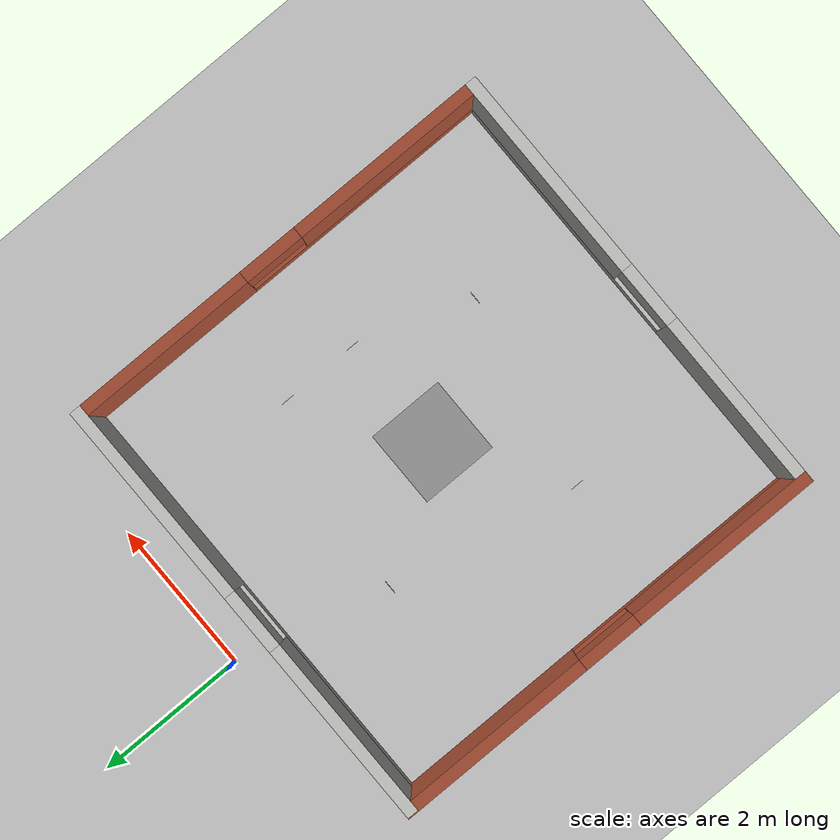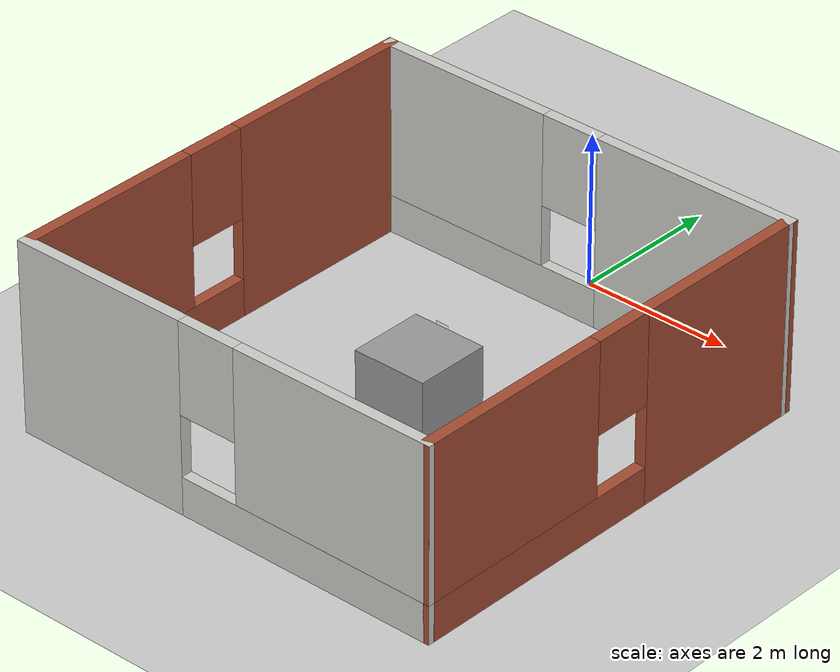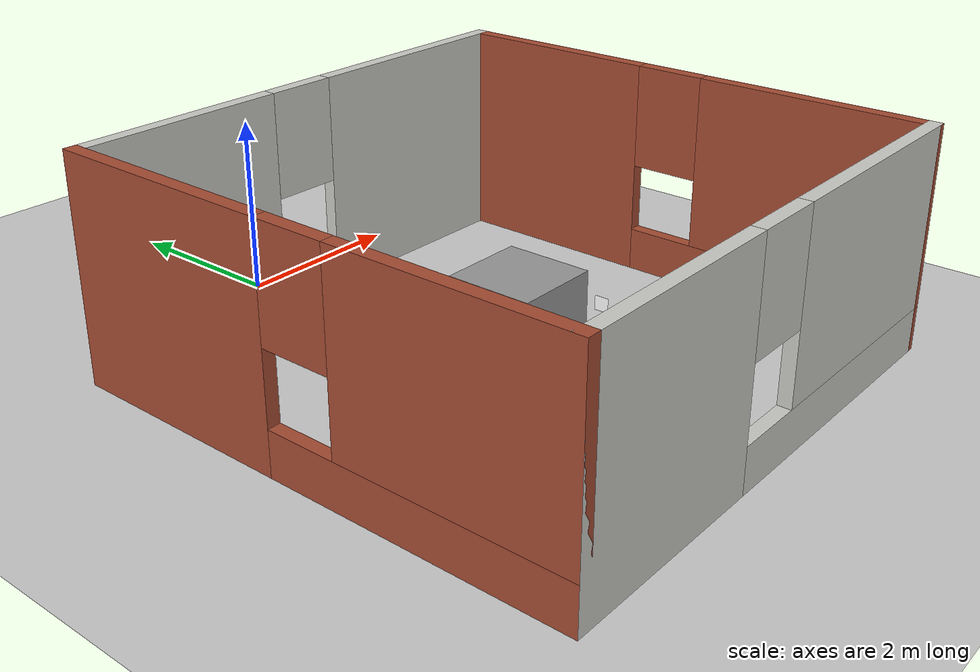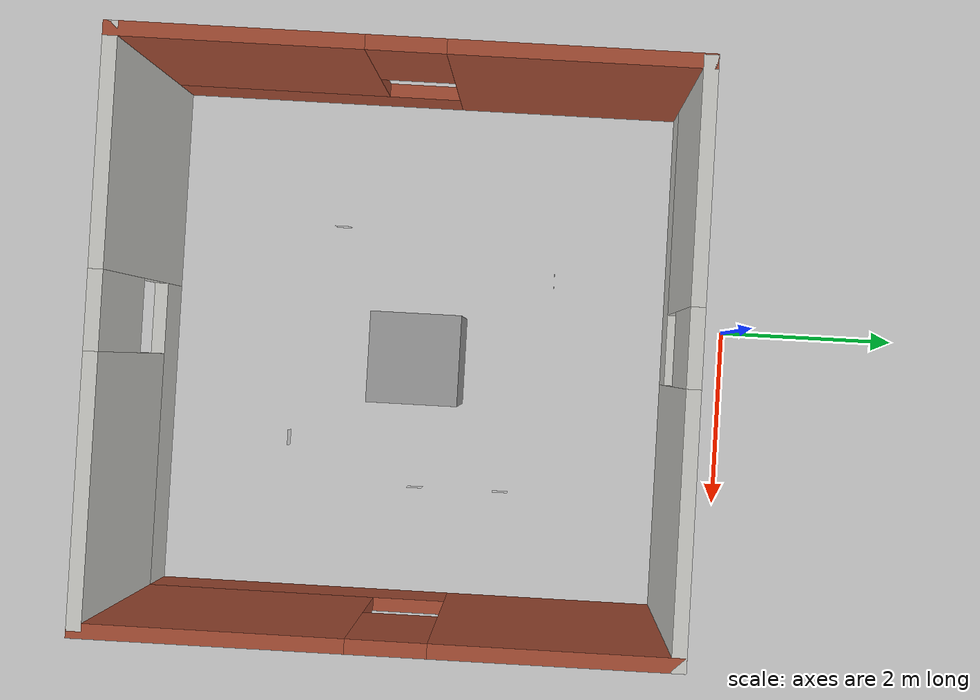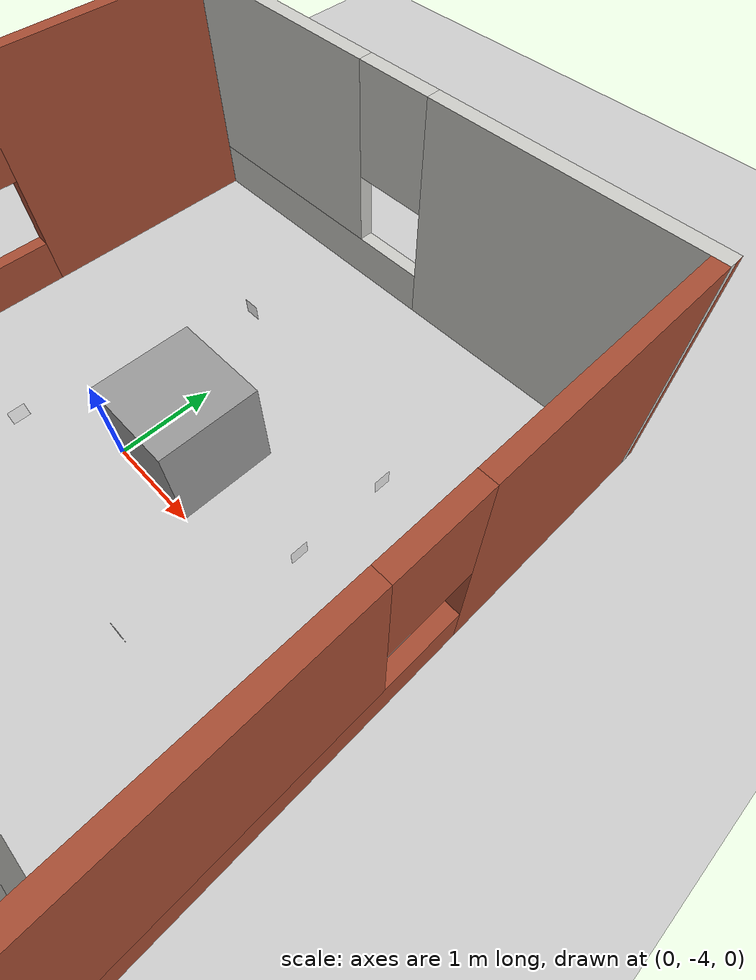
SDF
<sdf version="1.7">
 <world name="default">
  <light name="sun" type="directional">
   <pose>0 0 10 0 -0 0</pose>
   <diffuse>0.8 0.8 0.8 1</diffuse>
   <specular>0.2 0.2 0.2 1</specular>
   <attenuation>
    <range>1000</range>
    <constant>0.9</constant>
    <linear>0.01</linear>
    <quadratic>0.001</quadratic>
   </attenuation>
   <direction>-0.5 0.1 -0.9</direction>
   <spot><inner_angle>0</inner_angle><outer_angle>0</outer_angle><falloff>0</falloff></spot>
  </light>
  <model name="ground_plane">
   <static>1</static>
   <link name="link">
    <collision name="collision">
     <geometry><plane><normal>0 0 1</normal><size>100 100</size></plane></geometry>
     <surface>
      <contact><collide_bitmask>65535</collide_bitmask></contact>
      <friction><ode><mu>100</mu><mu2>50</mu2></ode></friction>
     </surface>
    </collision>
    <visual name="visual">
     <cast_shadows>0</cast_shadows>
     <geometry><plane><normal>0 0 1</normal><size>100 100</size></plane></geometry>
     <material>
      <script><uri>file://media/materials/scripts/gazebo.material</uri><name>Gazebo/Grey</name></script>
     </material>
    </visual>
   </link>
  </model>
  <physics type="ode">
   <real_time_update_rate>1000</real_time_update_rate>
   <max_step_size>0.001</max_step_size>
   <real_time_factor>1</real_time_factor>
   <ode>
    <solver>
     <type>quick</type>
     <iters>150</iters>
     <precon_iters>0</precon_iters>
     <sor>1.4</sor>
     <use_dynamic_moi_rescaling>1</use_dynamic_moi_rescaling>
    </solver>
    <constraints>
     <cfm>1e-05</cfm>
     <erp>0.2</erp>
     <contact_max_correcting_vel>2000</contact_max_correcting_vel>
     <contact_surface_layer>0.01</contact_surface_layer>
    </constraints>
   </ode>
  </physics>
  <scene><ambient>0.4 0.4 0.4 1</ambient><background>0.7 0.7 0.7 1</background><shadows>1</shadows></scene>
  <gravity>0 0 -9.8</gravity>
  <magnetic_field>6e-06 2.3e-05 -4.2e-05</magnetic_field>
  <atmosphere type="adiabatic"/>
  <spherical_coordinates>
   <surface_model>EARTH_WGS84</surface_model>
   <latitude_deg>0</latitude_deg>
   <longitude_deg>0</longitude_deg>
   <elevation>0</elevation>
   <heading_deg>0</heading_deg>
  </spherical_coordinates>
  <model name="aruco_walls_v2">
   <pose>0.382948 -3.50281 0 0 -0 0</pose>
   <link name="Wall_0">
    <pose>0.006528 2.88624 0 0 -0 3.14159</pose>
    <visual name="Wall_0_Visual_0">
     <pose>-1.62772 0 1.25 0 -0 0</pose>
     <geometry><box><size>2.74455 0.15 2.5</size></box></geometry>
     <material>
      <script><uri>file://media/materials/scripts/gazebo.material</uri><name>Gazebo/CeilingTiled</name></script>
      <ambient>1 1 1 1</ambient>
     </material>
     <meta><layer>0</layer></meta>
    </visual>
    <collision name="Wall_0_Collision_0">
     <geometry><box><size>2.74455 0.15 2.5</size></box></geometry>
     <pose>-1.62772 0 1.25 0 -0 0</pose>
    </collision>
    <visual name="Wall_0_Visual_1">
     <pose>1.37228 0 0.25 0 -0 0</pose>
     <geometry><box><size>3.25545 0.15 0.5</size></box></geometry>
     <material>
      <script><uri>file://media/materials/scripts/gazebo.material</uri><name>Gazebo/CeilingTiled</name></script>
      <ambient>1 1 1 1</ambient>
     </material>
     <meta><layer>0</layer></meta>
    </visual>
    <collision name="Wall_0_Collision_1">
     <geometry><box><size>3.25545 0.15 0.5</size></box></geometry>
     <pose>1.37228 0 0.25 0 -0 0</pose>
    </collision>
    <visual name="Wall_0_Visual_2">
     <pose>1.77228 0 1.5 0 -0 0</pose>
     <geometry><box><size>2.45545 0.15 2</size></box></geometry>
     <material>
      <script><uri>file://media/materials/scripts/gazebo.material</uri><name>Gazebo/CeilingTiled</name></script>
      <ambient>1 1 1 1</ambient>
     </material>
     <meta><layer>0</layer></meta>
    </visual>
    <collision name="Wall_0_Collision_2">
     <geometry><box><size>2.45545 0.15 2</size></box></geometry>
     <pose>1.77228 0 1.5 0 -0 0</pose>
    </collision>
    <visual name="Wall_0_Visual_3">
     <pose>0.144553 0 1.9 0 -0 0</pose>
     <geometry><box><size>0.8 0.15 1.2</size></box></geometry>
     <material>
      <script><uri>file://media/materials/scripts/gazebo.material</uri><name>Gazebo/CeilingTiled</name></script>
      <ambient>1 1 1 1</ambient>
     </material>
     <meta><layer>0</layer></meta>
    </visual>
    <collision name="Wall_0_Collision_3">
     <geometry><box><size>0.8 0.15 1.2</size></box></geometry>
     <pose>0.144553 0 1.9 0 -0 0</pose>
    </collision>
   </link>
   <link name="Wall_5">
    <pose>-2.9317 -0.03876 0 0 -0 -1.5708</pose>
    <visual name="Wall_5_Visual_0">
     <pose>-1.67624 0 1.25 0 -0 0</pose>
     <geometry><box><size>2.64752 0.15 2.5</size></box></geometry>
     <material>
      <script><uri>file://media/materials/scripts/gazebo.material</uri><name>Gazebo/Bricks</name></script>
      <ambient>1 1 1 1</ambient>
     </material>
     <meta><layer>0</layer></meta>
    </visual>
    <collision name="Wall_5_Collision_0">
     <geometry><box><size>2.64752 0.15 2.5</size></box></geometry>
     <pose>-1.67624 0 1.25 0 -0 0</pose>
    </collision>
    <visual name="Wall_5_Visual_1">
     <pose>1.32376 0 0.25 0 -0 0</pose>
     <geometry><box><size>3.35248 0.15 0.5</size></box></geometry>
     <material>
      <script><uri>file://media/materials/scripts/gazebo.material</uri><name>Gazebo/Bricks</name></script>
      <ambient>1 1 1 1</ambient>
     </material>
     <meta><layer>0</layer></meta>
    </visual>
    <collision name="Wall_5_Collision_1">
     <geometry><box><size>3.35248 0.15 0.5</size></box></geometry>
     <pose>1.32376 0 0.25 0 -0 0</pose>
    </collision>
    <visual name="Wall_5_Visual_2">
     <pose>1.72376 0 1.5 0 -0 0</pose>
     <geometry><box><size>2.55248 0.15 2</size></box></geometry>
     <material>
      <script><uri>file://media/materials/scripts/gazebo.material</uri><name>Gazebo/Bricks</name></script>
      <ambient>1 1 1 1</ambient>
     </material>
     <meta><layer>0</layer></meta>
    </visual>
    <collision name="Wall_5_Collision_2">
     <geometry><box><size>2.55248 0.15 2</size></box></geometry>
     <pose>1.72376 0 1.5 0 -0 0</pose>
    </collision>
    <visual name="Wall_5_Visual_3">
     <pose>0.047517 0 1.9 0 -0 0</pose>
     <geometry><box><size>0.8 0.15 1.2</size></box></geometry>
     <material>
      <script><uri>file://media/materials/scripts/gazebo.material</uri><name>Gazebo/Bricks</name></script>
      <ambient>1 1 1 1</ambient>
     </material>
     <meta><layer>0</layer></meta>
    </visual>
    <collision name="Wall_5_Collision_3">
     <geometry><box><size>0.8 0.15 1.2</size></box></geometry>
     <pose>0.047517 0 1.9 0 -0 0</pose>
    </collision>
   </link>
   <link name="Wall_6">
    <pose>-0.006697 -2.96376 0 0 -0 0</pose>
    <visual name="Wall_6_Visual_0">
     <pose>-1.78835 0 1.25 0 -0 0</pose>
     <geometry><box><size>2.4233 0.15 2.5</size></box></geometry>
     <material>
      <script><uri>file://media/materials/scripts/gazebo.material</uri><name>Gazebo/CeilingTiled</name></script>
      <ambient>1 1 1 1</ambient>
     </material>
     <meta><layer>0</layer></meta>
    </visual>
    <collision name="Wall_6_Collision_0">
     <geometry><box><size>2.4233 0.15 2.5</size></box></geometry>
     <pose>-1.78835 0 1.25 0 -0 0</pose>
    </collision>
    <visual name="Wall_6_Visual_1">
     <pose>1.21165 0 0.25 0 -0 0</pose>
     <geometry><box><size>3.5767 0.15 0.5</size></box></geometry>
     <material>
      <script><uri>file://media/materials/scripts/gazebo.material</uri><name>Gazebo/CeilingTiled</name></script>
      <ambient>1 1 1 1</ambient>
     </material>
     <meta><layer>0</layer></meta>
    </visual>
    <collision name="Wall_6_Collision_1">
     <geometry><box><size>3.5767 0.15 0.5</size></box></geometry>
     <pose>1.21165 0 0.25 0 -0 0</pose>
    </collision>
    <visual name="Wall_6_Visual_2">
     <pose>1.61165 0 1.5 0 -0 0</pose>
     <geometry><box><size>2.7767 0.15 2</size></box></geometry>
     <material>
      <script><uri>file://media/materials/scripts/gazebo.material</uri><name>Gazebo/CeilingTiled</name></script>
      <ambient>1 1 1 1</ambient>
     </material>
     <meta><layer>0</layer></meta>
    </visual>
    <collision name="Wall_6_Collision_2">
     <geometry><box><size>2.7767 0.15 2</size></box></geometry>
     <pose>1.61165 0 1.5 0 -0 0</pose>
    </collision>
    <visual name="Wall_6_Visual_3">
     <pose>-0.176697 0 1.9 0 -0 0</pose>
     <geometry><box><size>0.8 0.15 1.2</size></box></geometry>
     <material>
      <script><uri>file://media/materials/scripts/gazebo.material</uri><name>Gazebo/CeilingTiled</name></script>
      <ambient>1 1 1 1</ambient>
     </material>
     <meta><layer>0</layer></meta>
    </visual>
    <collision name="Wall_6_Collision_3">
     <geometry><box><size>0.8 0.15 1.2</size></box></geometry>
     <pose>-0.176697 0 1.9 0 -0 0</pose>
    </collision>
   </link>
   <link name="Wall_8">
    <pose>2.92491 -0.03876 0 0 -0 -1.57306</pose>
    <visual name="Wall_8_Visual_0">
     <pose>-1.74417 0 1.25 0 -0 0</pose>
     <geometry><box><size>2.51168 0.15 2.5</size></box></geometry>
     <material>
      <script><uri>file://media/materials/scripts/gazebo.material</uri><name>Gazebo/Bricks</name></script>
      <ambient>1 1 1 1</ambient>
     </material>
     <meta><layer>0</layer></meta>
    </visual>
    <collision name="Wall_8_Collision_0">
     <geometry><box><size>2.51168 0.15 2.5</size></box></geometry>
     <pose>-1.74417 0 1.25 0 -0 0</pose>
    </collision>
    <visual name="Wall_8_Visual_1">
     <pose>1.25584 0 0.25 0 -0 0</pose>
     <geometry><box><size>3.48834 0.15 0.5</size></box></geometry>
     <material>
      <script><uri>file://media/materials/scripts/gazebo.material</uri><name>Gazebo/Bricks</name></script>
      <ambient>1 1 1 1</ambient>
     </material>
     <meta><layer>0</layer></meta>
    </visual>
    <collision name="Wall_8_Collision_1">
     <geometry><box><size>3.48834 0.15 0.5</size></box></geometry>
     <pose>1.25584 0 0.25 0 -0 0</pose>
    </collision>
    <visual name="Wall_8_Visual_2">
     <pose>1.65584 0 1.5 0 -0 0</pose>
     <geometry><box><size>2.68834 0.15 2</size></box></geometry>
     <material>
      <script><uri>file://media/materials/scripts/gazebo.material</uri><name>Gazebo/Bricks</name></script>
      <ambient>1 1 1 1</ambient>
     </material>
     <meta><layer>0</layer></meta>
    </visual>
    <collision name="Wall_8_Collision_2">
     <geometry><box><size>2.68834 0.15 2</size></box></geometry>
     <pose>1.65584 0 1.5 0 -0 0</pose>
    </collision>
    <visual name="Wall_8_Visual_3">
     <pose>-0.088331 0 1.9 0 -0 0</pose>
     <geometry><box><size>0.8 0.15 1.2</size></box></geometry>
     <material>
      <script><uri>file://media/materials/scripts/gazebo.material</uri><name>Gazebo/Bricks</name></script>
      <ambient>1 1 1 1</ambient>
     </material>
     <meta><layer>0</layer></meta>
    </visual>
    <collision name="Wall_8_Collision_3">
     <geometry><box><size>0.8 0.15 1.2</size></box></geometry>
     <pose>-0.088331 0 1.9 0 -0 0</pose>
    </collision>
   </link>
   <static>1</static>
  </model>
  <model name="unit_box">
   <pose>0.5 -3.5 0.5 0 -0 0</pose>
   <link name="link">
    <inertial>
     <mass>1</mass>
     <inertia>
      <ixx>0.166667</ixx>
      <ixy>0</ixy>
      <ixz>0</ixz>
      <iyy>0.166667</iyy>
      <iyz>0</iyz>
      <izz>0.166667</izz>
     </inertia>
    </inertial>
    <collision name="collision"><geometry><box><size>1 1 1</size></box></geometry></collision>
    <visual name="visual">
     <geometry><box><size>1 1 1</size></box></geometry>
     <material>
      <script><name>Gazebo/Grey</name><uri>file://media/materials/scripts/gazebo.material</uri></script>
     </material>
    </visual>
   </link>
  </model>
  <model name="aruco_visual_marker_1">
   <link name="marker">
    <visual name="visual">
     <geometry><box><size>0.1778 0.1778 1e-05</size></box></geometry>
     <material>
      <script>
       <uri>model://aruco_visual_marker_1/materials/scripts</uri>
       <uri>model://aruco_visual_marker_1/materials/textures</uri>
       <name>ArucoVisualMarker1/Marker</name>
      </script>
      <ambient>1 1 1 1</ambient>
      <diffuse>1 1 1 1</diffuse>
      <specular>0 0 0 1</specular>
      <emissive>1 1 1 0</emissive>
      <shader type="vertex"><normal_map>__default__</normal_map></shader>
     </material>
    </visual>
   </link>
   <link name="marker_pad">
    <pose relative_to="marker">0 0 -1e-05 0 -0 0</pose>
    <visual name="visual">
     <geometry><box><size>0.1778 0.1778 1e-05</size></box></geometry>
     <material>
      <lighting>1</lighting>
      <script><uri>file://media/materials/scripts/gazebo.material</uri><name>Gazebo/White</name></script>
      <ambient>0.3 0.3 0.3 1</ambient>
      <diffuse>0.7 0.7 0.7 1</diffuse>
      <specular>0.01 0.01 0.01 1</specular>
      <emissive>1 1 1 0</emissive>
      <shader type="vertex"><normal_map>__default__</normal_map></shader>
     </material>
    </visual>
   </link>
   <joint name="marker_JOINT_marker_pad" type="revolute">
    <parent>marker</parent>
    <child>marker_pad</child>
    <axis>
     <xyz>0 0 1</xyz>
     <limit><upper>0</upper><lower>0</lower></limit>
     <dynamics><spring_reference>0</spring_reference><spring_stiffness>0</spring_stiffness></dynamics>
    </axis>
   </joint>
   <static>1</static>
   <pose>2 -2.5 0.1 1.57 -0.004119 -1.57</pose>
  </model>
  <model name="aruco_visual_marker_2">
   <link name="marker">
    <visual name="visual">
     <geometry><box><size>0.1778 0.1778 1e-05</size></box></geometry>
     <material>
      <script>
       <uri>model://aruco_visual_marker_2/materials/scripts</uri>
       <uri>model://aruco_visual_marker_2/materials/textures</uri>
       <name>ArucoVisualMarker2/Marker</name>
      </script>
      <ambient>1 1 1 1</ambient>
      <diffuse>1 1 1 1</diffuse>
      <specular>0 0 0 1</specular>
      <emissive>1 1 1 0</emissive>
      <shader type="vertex"><normal_map>__default__</normal_map></shader>
     </material>
    </visual>
    <collision name="collision"><geometry><box><size>0.1778 0.1778 1e-05</size></box></geometry></collision>
   </link>
   <link name="marker_pad">
    <pose relative_to="marker">0 0 -1e-05 0 -0 0</pose>
    <visual name="visual">
     <geometry><box><size>0.1778 0.1778 1e-05</size></box></geometry>
     <material>
      <lighting>1</lighting>
      <script><uri>file://media/materials/scripts/gazebo.material</uri><name>Gazebo/White</name></script>
      <ambient>0.3 0.3 0.3 1</ambient>
      <diffuse>0.7 0.7 0.7 1</diffuse>
      <specular>0.01 0.01 0.01 1</specular>
      <emissive>1 1 1 0</emissive>
      <shader type="vertex"><normal_map>__default__</normal_map></shader>
     </material>
    </visual>
    <collision name="collision"><geometry><box><size>0.1778 0.1778 1e-05</size></box></geometry></collision>
   </link>
   <joint name="marker_JOINT_marker_pad" type="revolute">
    <parent>marker</parent>
    <child>marker_pad</child>
    <axis>
     <xyz>0 0 1</xyz>
     <limit><upper>0</upper><lower>0</lower></limit>
     <dynamics><spring_reference>0</spring_reference><spring_stiffness>0</spring_stiffness></dynamics>
    </axis>
   </joint>
   <static>1</static>
   <pose>2 -3.5 0.1 1.56999 -0 -1.57</pose>
  </model>
  <model name="aruco_visual_marker_3">
   <link name="marker">
    <visual name="visual">
     <geometry><box><size>0.1778 0.1778 1e-05</size></box></geometry>
     <material>
      <script>
       <uri>model://aruco_visual_marker_3/materials/scripts</uri>
       <uri>model://aruco_visual_marker_3/materials/textures</uri>
       <name>ArucoVisualMarker3/Marker</name>
      </script>
      <ambient>1 1 1 1</ambient>
      <diffuse>1 1 1 1</diffuse>
      <specular>0 0 0 1</specular>
      <emissive>1 1 1 0</emissive>
      <shader type="vertex"><normal_map>__default__</normal_map></shader>
     </material>
    </visual>
    <collision name="collision"><geometry><box><size>0.1778 0.1778 1e-05</size></box></geometry></collision>
   </link>
   <link name="marker_pad">
    <pose relative_to="marker">0 0 -1e-05 0 -0 0</pose>
    <visual name="visual">
     <geometry><box><size>0.1778 0.1778 1e-05</size></box></geometry>
     <material>
      <lighting>1</lighting>
      <script><uri>file://media/materials/scripts/gazebo.material</uri><name>Gazebo/White</name></script>
      <ambient>0.3 0.3 0.3 1</ambient>
      <diffuse>0.7 0.7 0.7 1</diffuse>
      <specular>0.01 0.01 0.01 1</specular>
      <emissive>1 1 1 0</emissive>
      <shader type="vertex"><normal_map>__default__</normal_map></shader>
     </material>
    </visual>
    <collision name="collision"><geometry><box><size>0.1778 0.1778 1e-05</size></box></geometry></collision>
   </link>
   <joint name="marker_JOINT_marker_pad" type="revolute">
    <parent>marker</parent>
    <child>marker_pad</child>
    <axis>
     <xyz>0 0 1</xyz>
     <limit><upper>0</upper><lower>0</lower></limit>
     <dynamics><spring_reference>0</spring_reference><spring_stiffness>0</spring_stiffness></dynamics>
    </axis>
   </joint>
   <static>1</static>
   <pose>1.5 -5 0.1 1.57 0 3.14</pose>
  </model>
  <model name="aruco_visual_marker_4">
   <link name="marker">
    <visual name="visual">
     <geometry><box><size>0.1778 0.1778 1e-05</size></box></geometry>
     <material>
      <script>
       <uri>model://aruco_visual_marker_4/materials/scripts</uri>
       <uri>model://aruco_visual_marker_4/materials/textures</uri>
       <name>ArucoVisualMarker4/Marker</name>
      </script>
      <ambient>1 1 1 1</ambient>
      <diffuse>1 1 1 1</diffuse>
      <specular>0 0 0 1</specular>
      <emissive>1 1 1 0</emissive>
      <shader type="vertex"><normal_map>__default__</normal_map></shader>
     </material>
    </visual>
    <collision name="collision"><geometry><box><size>0.1778 0.1778 1e-05</size></box></geometry></collision>
   </link>
   <link name="marker_pad">
    <pose relative_to="marker">0 0 -1e-05 0 -0 0</pose>
    <visual name="visual">
     <geometry><box><size>0.1778 0.1778 1e-05</size></box></geometry>
     <material>
      <lighting>1</lighting>
      <script><uri>file://media/materials/scripts/gazebo.material</uri><name>Gazebo/White</name></script>
      <ambient>0.3 0.3 0.3 1</ambient>
      <diffuse>0.7 0.7 0.7 1</diffuse>
      <specular>0.01 0.01 0.01 1</specular>
      <emissive>1 1 1 0</emissive>
      <shader type="vertex"><normal_map>__default__</normal_map></shader>
     </material>
    </visual>
    <collision name="collision"><geometry><box><size>0.1778 0.1778 1e-05</size></box></geometry></collision>
   </link>
   <joint name="marker_JOINT_marker_pad" type="revolute">
    <parent>marker</parent>
    <child>marker_pad</child>
    <axis>
     <xyz>0 0 1</xyz>
     <limit><upper>0</upper><lower>0</lower></limit>
     <dynamics><spring_reference>0</spring_reference><spring_stiffness>0</spring_stiffness></dynamics>
    </axis>
   </joint>
   <static>1</static>
   <pose>-1 -4.5 0.1 1.57 -0 1.57</pose>
  </model>
  <model name="aruco_visual_marker_5">
   <link name="marker">
    <visual name="visual">
     <geometry><box><size>0.1778 0.1778 1e-05</size></box></geometry>
     <material>
      <script>
       <uri>model://aruco_visual_marker_5/materials/scripts</uri>
       <uri>model://aruco_visual_marker_5/materials/textures</uri>
       <name>ArucoVisualMarker5/Marker</name>
      </script>
      <ambient>1 1 1 1</ambient>
      <diffuse>1 1 1 1</diffuse>
      <specular>0 0 0 1</specular>
      <emissive>1 1 1 0</emissive>
      <shader type="vertex"><normal_map>__default__</normal_map></shader>
     </material>
    </visual>
    <collision name="collision"><geometry><box><size>0.1778 0.1778 1e-05</size></box></geometry></collision>
   </link>
   <link name="marker_pad">
    <pose relative_to="marker">0 0 -1e-05 0 -0 0</pose>
    <visual name="visual">
     <geometry><box><size>0.1778 0.1778 1e-05</size></box></geometry>
     <material>
      <lighting>1</lighting>
      <script><uri>file://media/materials/scripts/gazebo.material</uri><name>Gazebo/White</name></script>
      <ambient>0.3 0.3 0.3 1</ambient>
      <diffuse>0.7 0.7 0.7 1</diffuse>
      <specular>0.01 0.01 0.01 1</specular>
      <emissive>1 1 1 0</emissive>
      <shader type="vertex"><normal_map>__default__</normal_map></shader>
     </material>
    </visual>
    <collision name="collision"><geometry><box><size>0.1778 0.1778 1e-05</size></box></geometry></collision>
   </link>
   <joint name="marker_JOINT_marker_pad" type="revolute">
    <parent>marker</parent>
    <child>marker_pad</child>
    <axis>
     <xyz>0 0 1</xyz>
     <limit><upper>0</upper><lower>0</lower></limit>
     <dynamics><spring_reference>0</spring_reference><spring_stiffness>0</spring_stiffness></dynamics>
    </axis>
   </joint>
   <static>1</static>
   <pose>-0.5 -2 0.1 1.57 -0 0</pose>
  </model>
 </world>
</sdf>
